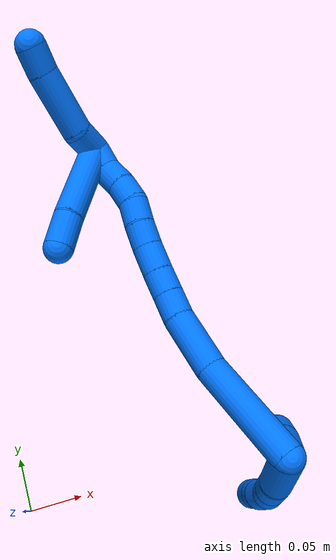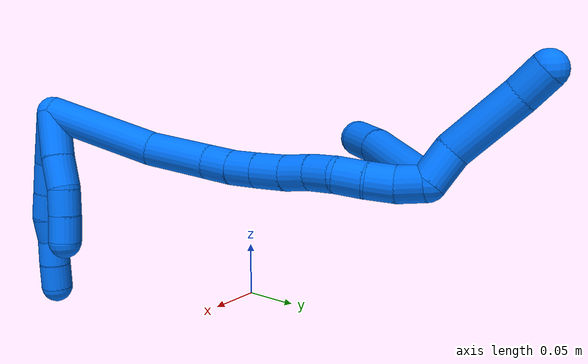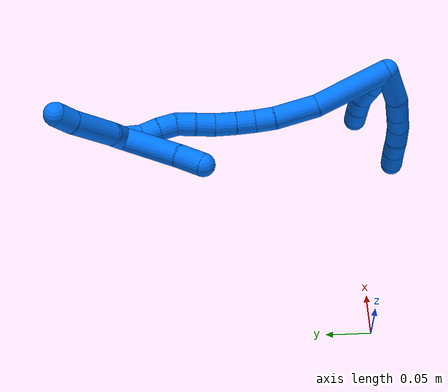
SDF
<sdf version="1.7">
 <world name="default">
  <model name="14">
   <static>0</static>
   <link name="14">
    <collision name="collision-cylinder-e_1_2_8">
     <pose>-0.004737 -0.007278 -0.019432 2.78323 -0.224443 -1.11316</pose>
     <geometry><cylinder><radius>0.0125</radius><length>0.042568</length></cylinder></geometry>
     <surface>
      <friction><ode><mu>1.16</mu><mu2>1.16</mu2><slip1>0</slip1><slip2>0</slip2></ode></friction>
      <contact><ode><kp>1e+06</kp><kd>1</kd><max_vel>0</max_vel><min_depth>0.001</min_depth></ode></contact>
     </surface>
    </collision>
    <visual name="visual-cylinder-e_1_2_8">
     <pose>-0.004737 -0.007278 -0.019432 2.78323 -0.224443 -1.11316</pose>
     <geometry><cylinder><radius>0.0125</radius><length>0.042568</length></cylinder></geometry>
     <material><ambient>0 0.462745 1 1</ambient></material>
    </visual>
    <collision name="collision-cylinder-e_2_8_9">
     <pose>-0.009984 -0.017233 -0.051496 2.93276 -0.039484 -0.372447</pose>
     <geometry><cylinder><radius>0.0125</radius><length>0.025845</length></cylinder></geometry>
     <surface>
      <friction><ode><mu>1.16</mu><mu2>1.16</mu2><slip1>0</slip1><slip2>0</slip2></ode></friction>
      <contact><ode><kp>1e+06</kp><kd>1</kd><max_vel>0</max_vel><min_depth>0.001</min_depth></ode></contact>
     </surface>
    </collision>
    <visual name="visual-cylinder-e_2_8_9">
     <pose>-0.009984 -0.017233 -0.051496 2.93276 -0.039484 -0.372447</pose>
     <geometry><cylinder><radius>0.0125</radius><length>0.025845</length></cylinder></geometry>
     <material><ambient>0 0.462745 1 1</ambient></material>
    </visual>
    <collision name="collision-cylinder-e_3_9_10">
     <pose>-0.01073 -0.022091 -0.074527 2.93485 -0.022142 -0.212629</pose>
     <geometry><cylinder><radius>0.0125</radius><length>0.021255</length></cylinder></geometry>
     <surface>
      <friction><ode><mu>1.16</mu><mu2>1.16</mu2><slip1>0</slip1><slip2>0</slip2></ode></friction>
      <contact><ode><kp>1e+06</kp><kd>1</kd><max_vel>0</max_vel><min_depth>0.001</min_depth></ode></contact>
     </surface>
    </collision>
    <visual name="visual-cylinder-e_3_9_10">
     <pose>-0.01073 -0.022091 -0.074527 2.93485 -0.022142 -0.212629</pose>
     <geometry><cylinder><radius>0.0125</radius><length>0.021255</length></cylinder></geometry>
     <material><ambient>0 0.462745 1 1</ambient></material>
    </visual>
    <collision name="collision-cylinder-e_4_10_11">
     <pose>-0.012569 -0.024099 -0.094838 -3.12413 -0.16039 2.92516</pose>
     <geometry><cylinder><radius>0.0125</radius><length>0.020087</length></cylinder></geometry>
     <surface>
      <friction><ode><mu>1.16</mu><mu2>1.16</mu2><slip1>0</slip1><slip2>0</slip2></ode></friction>
      <contact><ode><kp>1e+06</kp><kd>1</kd><max_vel>0</max_vel><min_depth>0.001</min_depth></ode></contact>
     </surface>
    </collision>
    <visual name="visual-cylinder-e_4_10_11">
     <pose>-0.012569 -0.024099 -0.094838 -3.12413 -0.16039 2.92516</pose>
     <geometry><cylinder><radius>0.0125</radius><length>0.020087</length></cylinder></geometry>
     <material><ambient>0 0.462745 1 1</ambient></material>
    </visual>
    <collision name="collision-cylinder-e_5_11_12">
     <pose>-0.013694 -0.024217 -0.114812 3.11265 0.047544 2.04809</pose>
     <geometry><cylinder><radius>0.0125</radius><length>0.020154</length></cylinder></geometry>
     <surface>
      <friction><ode><mu>1.16</mu><mu2>1.16</mu2><slip1>0</slip1><slip2>0</slip2></ode></friction>
      <contact><ode><kp>1e+06</kp><kd>1</kd><max_vel>0</max_vel><min_depth>0.001</min_depth></ode></contact>
     </surface>
    </collision>
    <visual name="visual-cylinder-e_5_11_12">
     <pose>-0.013694 -0.024217 -0.114812 3.11265 0.047544 2.04809</pose>
     <geometry><cylinder><radius>0.0125</radius><length>0.020154</length></cylinder></geometry>
     <material><ambient>0 0.462745 1 1</ambient></material>
    </visual>
    <collision name="collision-cylinder-e_6_12_6">
     <pose>-0.013426 -0.024886 -0.13491 3.10404 -0.021049 -1.02173</pose>
     <geometry><cylinder><radius>0.0125</radius><length>0.020091</length></cylinder></geometry>
     <surface>
      <friction><ode><mu>1.16</mu><mu2>1.16</mu2><slip1>0</slip1><slip2>0</slip2></ode></friction>
      <contact><ode><kp>1e+06</kp><kd>1</kd><max_vel>0</max_vel><min_depth>0.001</min_depth></ode></contact>
     </surface>
    </collision>
    <visual name="visual-cylinder-e_6_12_6">
     <pose>-0.013426 -0.024886 -0.13491 3.10404 -0.021049 -1.02173</pose>
     <geometry><cylinder><radius>0.0125</radius><length>0.020091</length></cylinder></geometry>
     <material><ambient>0 0.462745 1 1</ambient></material>
    </visual>
    <collision name="collision-cylinder-e_1_2_13">
     <pose>0.005693 0.003954 -0.016323 -2.90394 0.326806 -1.88813</pose>
     <geometry><cylinder><radius>0.0125</radius><length>0.035468</length></cylinder></geometry>
     <surface>
      <friction><ode><mu>1.16</mu><mu2>1.16</mu2><slip1>0</slip1><slip2>0</slip2></ode></friction>
      <contact><ode><kp>1e+06</kp><kd>1</kd><max_vel>0</max_vel><min_depth>0.001</min_depth></ode></contact>
     </surface>
    </collision>
    <visual name="visual-cylinder-e_1_2_13">
     <pose>0.005693 0.003954 -0.016323 -2.90394 0.326806 -1.88813</pose>
     <geometry><cylinder><radius>0.0125</radius><length>0.035468</length></cylinder></geometry>
     <material><ambient>0 0.462745 1 1</ambient></material>
    </visual>
    <collision name="collision-cylinder-e_2_13_14">
     <pose>0.014445 0.011204 -0.043852 -2.85548 0.256117 -1.45891</pose>
     <geometry><cylinder><radius>0.0125</radius><length>0.024149</length></cylinder></geometry>
     <surface>
      <friction><ode><mu>1.16</mu><mu2>1.16</mu2><slip1>0</slip1><slip2>0</slip2></ode></friction>
      <contact><ode><kp>1e+06</kp><kd>1</kd><max_vel>0</max_vel><min_depth>0.001</min_depth></ode></contact>
     </surface>
    </collision>
    <visual name="visual-cylinder-e_2_13_14">
     <pose>0.014445 0.011204 -0.043852 -2.85548 0.256117 -1.45891</pose>
     <geometry><cylinder><radius>0.0125</radius><length>0.024149</length></cylinder></geometry>
     <material><ambient>0 0.462745 1 1</ambient></material>
    </visual>
    <collision name="collision-cylinder-e_3_14_15">
     <pose>0.018841 0.014714 -0.06498 -3.12009 0.134018 -2.82388</pose>
     <geometry><cylinder><radius>0.0125</radius><length>0.020028</length></cylinder></geometry>
     <surface>
      <friction><ode><mu>1.16</mu><mu2>1.16</mu2><slip1>0</slip1><slip2>0</slip2></ode></friction>
      <contact><ode><kp>1e+06</kp><kd>1</kd><max_vel>0</max_vel><min_depth>0.001</min_depth></ode></contact>
     </surface>
    </collision>
    <visual name="visual-cylinder-e_3_14_15">
     <pose>0.018841 0.014714 -0.06498 -3.12009 0.134018 -2.82388</pose>
     <geometry><cylinder><radius>0.0125</radius><length>0.020028</length></cylinder></geometry>
     <material><ambient>0 0.462745 1 1</ambient></material>
    </visual>
    <collision name="collision-cylinder-e_4_15_5">
     <pose>0.021523 0.014602 -0.084985 3.10933 0.132396 2.66417</pose>
     <geometry><cylinder><radius>0.0125</radius><length>0.020356</length></cylinder></geometry>
     <surface>
      <friction><ode><mu>1.16</mu><mu2>1.16</mu2><slip1>0</slip1><slip2>0</slip2></ode></friction>
      <contact><ode><kp>1e+06</kp><kd>1</kd><max_vel>0</max_vel><min_depth>0.001</min_depth></ode></contact>
     </surface>
    </collision>
    <visual name="visual-cylinder-e_4_15_5">
     <pose>0.021523 0.014602 -0.084985 3.10933 0.132396 2.66417</pose>
     <geometry><cylinder><radius>0.0125</radius><length>0.020356</length></cylinder></geometry>
     <material><ambient>0 0.462745 1 1</ambient></material>
    </visual>
    <collision name="collision-cylinder-e_1_2_16">
     <pose>-0.002457 0.040409 -0.013929 -1.90275 -0.057418 0.080504</pose>
     <geometry><cylinder><radius>0.0125</radius><length>0.085626</length></cylinder></geometry>
     <surface>
      <friction><ode><mu>1.16</mu><mu2>1.16</mu2><slip1>0</slip1><slip2>0</slip2></ode></friction>
      <contact><ode><kp>1e+06</kp><kd>1</kd><max_vel>0</max_vel><min_depth>0.001</min_depth></ode></contact>
     </surface>
    </collision>
    <visual name="visual-cylinder-e_1_2_16">
     <pose>-0.002457 0.040409 -0.013929 -1.90275 -0.057418 0.080504</pose>
     <geometry><cylinder><radius>0.0125</radius><length>0.085626</length></cylinder></geometry>
     <material><ambient>0 0.462745 1 1</ambient></material>
    </visual>
    <collision name="collision-cylinder-e_2_16_17">
     <pose>-0.00371 0.104451 -0.032218 -1.7532 0.050056 -0.060129</pose>
     <geometry><cylinder><radius>0.0125</radius><length>0.048123</length></cylinder></geometry>
     <surface>
      <friction><ode><mu>1.16</mu><mu2>1.16</mu2><slip1>0</slip1><slip2>0</slip2></ode></friction>
      <contact><ode><kp>1e+06</kp><kd>1</kd><max_vel>0</max_vel><min_depth>0.001</min_depth></ode></contact>
     </surface>
    </collision>
    <visual name="visual-cylinder-e_2_16_17">
     <pose>-0.00371 0.104451 -0.032218 -1.7532 0.050056 -0.060129</pose>
     <geometry><cylinder><radius>0.0125</radius><length>0.048123</length></cylinder></geometry>
     <material><ambient>0 0.462745 1 1</ambient></material>
    </visual>
    <collision name="collision-cylinder-e_3_17_18">
     <pose>-0.000496 0.138499 -0.038059 -1.71211 0.188768 -0.217312</pose>
     <geometry><cylinder><radius>0.0125</radius><length>0.021422</length></cylinder></geometry>
     <surface>
      <friction><ode><mu>1.16</mu><mu2>1.16</mu2><slip1>0</slip1><slip2>0</slip2></ode></friction>
      <contact><ode><kp>1e+06</kp><kd>1</kd><max_vel>0</max_vel><min_depth>0.001</min_depth></ode></contact>
     </surface>
    </collision>
    <visual name="visual-cylinder-e_3_17_18">
     <pose>-0.000496 0.138499 -0.038059 -1.71211 0.188768 -0.217312</pose>
     <geometry><cylinder><radius>0.0125</radius><length>0.021422</length></cylinder></geometry>
     <material><ambient>0 0.462745 1 1</ambient></material>
    </visual>
    <collision name="collision-cylinder-e_4_18_19">
     <pose>0.003257 0.159131 -0.040045 -1.62012 0.168829 -0.177324</pose>
     <geometry><cylinder><radius>0.0125</radius><length>0.020752</length></cylinder></geometry>
     <surface>
      <friction><ode><mu>1.16</mu><mu2>1.16</mu2><slip1>0</slip1><slip2>0</slip2></ode></friction>
      <contact><ode><kp>1e+06</kp><kd>1</kd><max_vel>0</max_vel><min_depth>0.001</min_depth></ode></contact>
     </surface>
    </collision>
    <visual name="visual-cylinder-e_4_18_19">
     <pose>0.003257 0.159131 -0.040045 -1.62012 0.168829 -0.177324</pose>
     <geometry><cylinder><radius>0.0125</radius><length>0.020752</length></cylinder></geometry>
     <material><ambient>0 0.462745 1 1</ambient></material>
    </visual>
    <collision name="collision-cylinder-e_5_19_20">
     <pose>0.007236 0.180833 -0.040803 -1.59287 0.19211 -0.19637</pose>
     <geometry><cylinder><radius>0.0125</radius><length>0.023409</length></cylinder></geometry>
     <surface>
      <friction><ode><mu>1.16</mu><mu2>1.16</mu2><slip1>0</slip1><slip2>0</slip2></ode></friction>
      <contact><ode><kp>1e+06</kp><kd>1</kd><max_vel>0</max_vel><min_depth>0.001</min_depth></ode></contact>
     </surface>
    </collision>
    <visual name="visual-cylinder-e_5_19_20">
     <pose>0.007236 0.180833 -0.040803 -1.59287 0.19211 -0.19637</pose>
     <geometry><cylinder><radius>0.0125</radius><length>0.023409</length></cylinder></geometry>
     <material><ambient>0 0.462745 1 1</ambient></material>
    </visual>
    <collision name="collision-cylinder-e_6_20_21">
     <pose>0.011768 0.202244 -0.040219 -1.48661 0.226747 -0.208558</pose>
     <geometry><cylinder><radius>0.0125</radius><length>0.020442</length></cylinder></geometry>
     <surface>
      <friction><ode><mu>1.16</mu><mu2>1.16</mu2><slip1>0</slip1><slip2>0</slip2></ode></friction>
      <contact><ode><kp>1e+06</kp><kd>1</kd><max_vel>0</max_vel><min_depth>0.001</min_depth></ode></contact>
     </surface>
    </collision>
    <visual name="visual-cylinder-e_6_20_21">
     <pose>0.011768 0.202244 -0.040219 -1.48661 0.226747 -0.208558</pose>
     <geometry><cylinder><radius>0.0125</radius><length>0.020442</length></cylinder></geometry>
     <material><ambient>0 0.462745 1 1</ambient></material>
    </visual>
    <collision name="collision-cylinder-e_7_21_22">
     <pose>0.01708 0.221739 -0.03941 -1.57378 0.305056 -0.305953</pose>
     <geometry><cylinder><radius>0.0125</radius><length>0.020069</length></cylinder></geometry>
     <surface>
      <friction><ode><mu>1.16</mu><mu2>1.16</mu2><slip1>0</slip1><slip2>0</slip2></ode></friction>
      <contact><ode><kp>1e+06</kp><kd>1</kd><max_vel>0</max_vel><min_depth>0.001</min_depth></ode></contact>
     </surface>
    </collision>
    <visual name="visual-cylinder-e_7_21_22">
     <pose>0.01708 0.221739 -0.03941 -1.57378 0.305056 -0.305953</pose>
     <geometry><cylinder><radius>0.0125</radius><length>0.020069</length></cylinder></geometry>
     <material><ambient>0 0.462745 1 1</ambient></material>
    </visual>
    <collision name="collision-cylinder-e_8_22_23">
     <pose>0.020399 0.241202 -0.040919 -1.71939 0.030526 -0.035435</pose>
     <geometry><cylinder><radius>0.0125</radius><length>0.020013</length></cylinder></geometry>
     <surface>
      <friction><ode><mu>1.16</mu><mu2>1.16</mu2><slip1>0</slip1><slip2>0</slip2></ode></friction>
      <contact><ode><kp>1e+06</kp><kd>1</kd><max_vel>0</max_vel><min_depth>0.001</min_depth></ode></contact>
     </surface>
    </collision>
    <visual name="visual-cylinder-e_8_22_23">
     <pose>0.020399 0.241202 -0.040919 -1.71939 0.030526 -0.035435</pose>
     <geometry><cylinder><radius>0.0125</radius><length>0.020013</length></cylinder></geometry>
     <material><ambient>0 0.462745 1 1</ambient></material>
    </visual>
    <collision name="collision-cylinder-e_9_23_24">
     <pose>0.019302 0.260896 -0.04383 -1.71565 -0.140603 0.162511</pose>
     <geometry><cylinder><radius>0.0125</radius><length>0.02001</length></cylinder></geometry>
     <surface>
      <friction><ode><mu>1.16</mu><mu2>1.16</mu2><slip1>0</slip1><slip2>0</slip2></ode></friction>
      <contact><ode><kp>1e+06</kp><kd>1</kd><max_vel>0</max_vel><min_depth>0.001</min_depth></ode></contact>
     </surface>
    </collision>
    <visual name="visual-cylinder-e_9_23_24">
     <pose>0.019302 0.260896 -0.04383 -1.71565 -0.140603 0.162511</pose>
     <geometry><cylinder><radius>0.0125</radius><length>0.02001</length></cylinder></geometry>
     <material><ambient>0 0.462745 1 1</ambient></material>
    </visual>
    <collision name="collision-cylinder-e_10_24_1">
     <pose>0.01844 0.280717 -0.044433 -1.48846 0.053628 -0.049387</pose>
     <geometry><cylinder><radius>0.0125</radius><length>0.020134</length></cylinder></geometry>
     <surface>
      <friction><ode><mu>1.16</mu><mu2>1.16</mu2><slip1>0</slip1><slip2>0</slip2></ode></friction>
      <contact><ode><kp>1e+06</kp><kd>1</kd><max_vel>0</max_vel><min_depth>0.001</min_depth></ode></contact>
     </surface>
    </collision>
    <visual name="visual-cylinder-e_10_24_1">
     <pose>0.01844 0.280717 -0.044433 -1.48846 0.053628 -0.049387</pose>
     <geometry><cylinder><radius>0.0125</radius><length>0.020134</length></cylinder></geometry>
     <material><ambient>0 0.462745 1 1</ambient></material>
    </visual>
    <collision name="collision-cylinder-e_1_1_25">
     <pose>-0.007343 0.267606 -0.036624 1.27761 -0.828182 -0.631024</pose>
     <geometry><cylinder><radius>0.0125</radius><length>0.07146</length></cylinder></geometry>
     <surface>
      <friction><ode><mu>1.16</mu><mu2>1.16</mu2><slip1>0</slip1><slip2>0</slip2></ode></friction>
      <contact><ode><kp>1e+06</kp><kd>1</kd><max_vel>0</max_vel><min_depth>0.001</min_depth></ode></contact>
     </surface>
    </collision>
    <visual name="visual-cylinder-e_1_1_25">
     <pose>-0.007343 0.267606 -0.036624 1.27761 -0.828182 -0.631024</pose>
     <geometry><cylinder><radius>0.0125</radius><length>0.07146</length></cylinder></geometry>
     <material><ambient>0 0.462745 1 1</ambient></material>
    </visual>
    <collision name="collision-cylinder-e_2_25_4">
     <pose>-0.043945 0.234662 -0.028349 1.4399 -0.804326 -0.714064</pose>
     <geometry><cylinder><radius>0.0125</radius><length>0.02854</length></cylinder></geometry>
     <surface>
      <friction><ode><mu>1.16</mu><mu2>1.16</mu2><slip1>0</slip1><slip2>0</slip2></ode></friction>
      <contact><ode><kp>1e+06</kp><kd>1</kd><max_vel>0</max_vel><min_depth>0.001</min_depth></ode></contact>
     </surface>
    </collision>
    <visual name="visual-cylinder-e_2_25_4">
     <pose>-0.043945 0.234662 -0.028349 1.4399 -0.804326 -0.714064</pose>
     <geometry><cylinder><radius>0.0125</radius><length>0.02854</length></cylinder></geometry>
     <material><ambient>0 0.462745 1 1</ambient></material>
    </visual>
    <collision name="collision-cylinder-e_1_1_26">
     <pose>0.014768 0.297756 -0.033949 -0.628546 -0.339142 0.111191</pose>
     <geometry><cylinder><radius>0.0125</radius><length>0.025321</length></cylinder></geometry>
     <surface>
      <friction><ode><mu>1.16</mu><mu2>1.16</mu2><slip1>0</slip1><slip2>0</slip2></ode></friction>
      <contact><ode><kp>1e+06</kp><kd>1</kd><max_vel>0</max_vel><min_depth>0.001</min_depth></ode></contact>
     </surface>
    </collision>
    <visual name="visual-cylinder-e_1_1_26">
     <pose>0.014768 0.297756 -0.033949 -0.628546 -0.339142 0.111191</pose>
     <geometry><cylinder><radius>0.0125</radius><length>0.025321</length></cylinder></geometry>
     <material><ambient>0 0.462745 1 1</ambient></material>
    </visual>
    <collision name="collision-cylinder-e_2_26_27">
     <pose>0.00818 0.324975 -0.007463 -0.876184 -0.090104 0.042232</pose>
     <geometry><cylinder><radius>0.0125</radius><length>0.052797</length></cylinder></geometry>
     <surface>
      <friction><ode><mu>1.16</mu><mu2>1.16</mu2><slip1>0</slip1><slip2>0</slip2></ode></friction>
      <contact><ode><kp>1e+06</kp><kd>1</kd><max_vel>0</max_vel><min_depth>0.001</min_depth></ode></contact>
     </surface>
    </collision>
    <visual name="visual-cylinder-e_2_26_27">
     <pose>0.00818 0.324975 -0.007463 -0.876184 -0.090104 0.042232</pose>
     <geometry><cylinder><radius>0.0125</radius><length>0.052797</length></cylinder></geometry>
     <material><ambient>0 0.462745 1 1</ambient></material>
    </visual>
    <collision name="collision-cylinder-e_3_27_3">
     <pose>0.005903 0.353102 0.016907 -0.810353 0.008989 -0.003855</pose>
     <geometry><cylinder><radius>0.0125</radius><length>0.021882</length></cylinder></geometry>
     <surface>
      <friction><ode><mu>1.16</mu><mu2>1.16</mu2><slip1>0</slip1><slip2>0</slip2></ode></friction>
      <contact><ode><kp>1e+06</kp><kd>1</kd><max_vel>0</max_vel><min_depth>0.001</min_depth></ode></contact>
     </surface>
    </collision>
    <visual name="visual-cylinder-e_3_27_3">
     <pose>0.005903 0.353102 0.016907 -0.810353 0.008989 -0.003855</pose>
     <geometry><cylinder><radius>0.0125</radius><length>0.021882</length></cylinder></geometry>
     <material><ambient>0 0.462745 1 1</ambient></material>
    </visual>
    <collision name="collision-sphere-3">
     <pose>0.006002 0.361029 0.024448 0 -0 0</pose>
     <geometry><sphere><radius>0.0125</radius></sphere></geometry>
     <surface>
      <friction><ode><mu>1.16</mu><mu2>1.16</mu2><slip1>0</slip1><slip2>0</slip2></ode></friction>
      <contact><ode><kp>1e+06</kp><kd>1</kd><max_vel>0</max_vel><min_depth>0.001</min_depth></ode></contact>
     </surface>
    </collision>
    <visual name="visual-sphere-3">
     <pose>0.006002 0.361029 0.024448 0 -0 0</pose>
     <geometry><sphere><radius>0.0125</radius></sphere></geometry>
     <material><ambient>0 0.462745 1 1</ambient></material>
    </visual>
    <collision name="collision-sphere-27">
     <pose>0.005805 0.345175 0.009366 0 -0 0</pose>
     <geometry><sphere><radius>0.0125</radius></sphere></geometry>
     <surface>
      <friction><ode><mu>1.16</mu><mu2>1.16</mu2><slip1>0</slip1><slip2>0</slip2></ode></friction>
      <contact><ode><kp>1e+06</kp><kd>1</kd><max_vel>0</max_vel><min_depth>0.001</min_depth></ode></contact>
     </surface>
    </collision>
    <visual name="visual-sphere-27">
     <pose>0.005805 0.345175 0.009366 0 -0 0</pose>
     <geometry><sphere><radius>0.0125</radius></sphere></geometry>
     <material><ambient>0 0.462745 1 1</ambient></material>
    </visual>
    <collision name="collision-sphere-26">
     <pose>0.010556 0.304776 -0.024291 0 -0 0</pose>
     <geometry><sphere><radius>0.0125</radius></sphere></geometry>
     <surface>
      <friction><ode><mu>1.16</mu><mu2>1.16</mu2><slip1>0</slip1><slip2>0</slip2></ode></friction>
      <contact><ode><kp>1e+06</kp><kd>1</kd><max_vel>0</max_vel><min_depth>0.001</min_depth></ode></contact>
     </surface>
    </collision>
    <visual name="visual-sphere-26">
     <pose>0.010556 0.304776 -0.024291 0 -0 0</pose>
     <geometry><sphere><radius>0.0125</radius></sphere></geometry>
     <material><ambient>0 0.462745 1 1</ambient></material>
    </visual>
    <collision name="collision-sphere-4">
     <pose>-0.054225 0.224849 -0.027057 0 -0 0</pose>
     <geometry><sphere><radius>0.0125</radius></sphere></geometry>
     <surface>
      <friction><ode><mu>1.16</mu><mu2>1.16</mu2><slip1>0</slip1><slip2>0</slip2></ode></friction>
      <contact><ode><kp>1e+06</kp><kd>1</kd><max_vel>0</max_vel><min_depth>0.001</min_depth></ode></contact>
     </surface>
    </collision>
    <visual name="visual-sphere-4">
     <pose>-0.054225 0.224849 -0.027057 0 -0 0</pose>
     <geometry><sphere><radius>0.0125</radius></sphere></geometry>
     <material><ambient>0 0.462745 1 1</ambient></material>
    </visual>
    <collision name="collision-sphere-25">
     <pose>-0.033665 0.244475 -0.029641 0 -0 0</pose>
     <geometry><sphere><radius>0.0125</radius></sphere></geometry>
     <surface>
      <friction><ode><mu>1.16</mu><mu2>1.16</mu2><slip1>0</slip1><slip2>0</slip2></ode></friction>
      <contact><ode><kp>1e+06</kp><kd>1</kd><max_vel>0</max_vel><min_depth>0.001</min_depth></ode></contact>
     </surface>
    </collision>
    <visual name="visual-sphere-25">
     <pose>-0.033665 0.244475 -0.029641 0 -0 0</pose>
     <geometry><sphere><radius>0.0125</radius></sphere></geometry>
     <material><ambient>0 0.462745 1 1</ambient></material>
    </visual>
    <collision name="collision-sphere-1">
     <pose>0.018979 0.290736 -0.043606 0 -0 0</pose>
     <geometry><sphere><radius>0.0125</radius></sphere></geometry>
     <surface>
      <friction><ode><mu>1.16</mu><mu2>1.16</mu2><slip1>0</slip1><slip2>0</slip2></ode></friction>
      <contact><ode><kp>1e+06</kp><kd>1</kd><max_vel>0</max_vel><min_depth>0.001</min_depth></ode></contact>
     </surface>
    </collision>
    <visual name="visual-sphere-1">
     <pose>0.018979 0.290736 -0.043606 0 -0 0</pose>
     <geometry><sphere><radius>0.0125</radius></sphere></geometry>
     <material><ambient>0 0.462745 1 1</ambient></material>
    </visual>
    <collision name="collision-sphere-24">
     <pose>0.0179 0.270699 -0.04526 0 -0 0</pose>
     <geometry><sphere><radius>0.0125</radius></sphere></geometry>
     <surface>
      <friction><ode><mu>1.16</mu><mu2>1.16</mu2><slip1>0</slip1><slip2>0</slip2></ode></friction>
      <contact><ode><kp>1e+06</kp><kd>1</kd><max_vel>0</max_vel><min_depth>0.001</min_depth></ode></contact>
     </surface>
    </collision>
    <visual name="visual-sphere-24">
     <pose>0.0179 0.270699 -0.04526 0 -0 0</pose>
     <geometry><sphere><radius>0.0125</radius></sphere></geometry>
     <material><ambient>0 0.462745 1 1</ambient></material>
    </visual>
    <collision name="collision-sphere-23">
     <pose>0.020704 0.251093 -0.0424 0 -0 0</pose>
     <geometry><sphere><radius>0.0125</radius></sphere></geometry>
     <surface>
      <friction><ode><mu>1.16</mu><mu2>1.16</mu2><slip1>0</slip1><slip2>0</slip2></ode></friction>
      <contact><ode><kp>1e+06</kp><kd>1</kd><max_vel>0</max_vel><min_depth>0.001</min_depth></ode></contact>
     </surface>
    </collision>
    <visual name="visual-sphere-23">
     <pose>0.020704 0.251093 -0.0424 0 -0 0</pose>
     <geometry><sphere><radius>0.0125</radius></sphere></geometry>
     <material><ambient>0 0.462745 1 1</ambient></material>
    </visual>
    <collision name="collision-sphere-22">
     <pose>0.020094 0.231311 -0.039438 0 -0 0</pose>
     <geometry><sphere><radius>0.0125</radius></sphere></geometry>
     <surface>
      <friction><ode><mu>1.16</mu><mu2>1.16</mu2><slip1>0</slip1><slip2>0</slip2></ode></friction>
      <contact><ode><kp>1e+06</kp><kd>1</kd><max_vel>0</max_vel><min_depth>0.001</min_depth></ode></contact>
     </surface>
    </collision>
    <visual name="visual-sphere-22">
     <pose>0.020094 0.231311 -0.039438 0 -0 0</pose>
     <geometry><sphere><radius>0.0125</radius></sphere></geometry>
     <material><ambient>0 0.462745 1 1</ambient></material>
    </visual>
    <collision name="collision-sphere-21">
     <pose>0.014066 0.212168 -0.039381 0 -0 0</pose>
     <geometry><sphere><radius>0.0125</radius></sphere></geometry>
     <surface>
      <friction><ode><mu>1.16</mu><mu2>1.16</mu2><slip1>0</slip1><slip2>0</slip2></ode></friction>
      <contact><ode><kp>1e+06</kp><kd>1</kd><max_vel>0</max_vel><min_depth>0.001</min_depth></ode></contact>
     </surface>
    </collision>
    <visual name="visual-sphere-21">
     <pose>0.014066 0.212168 -0.039381 0 -0 0</pose>
     <geometry><sphere><radius>0.0125</radius></sphere></geometry>
     <material><ambient>0 0.462745 1 1</ambient></material>
    </visual>
    <collision name="collision-sphere-12">
     <pose>-0.013215 -0.024508 -0.124874 0 -0 0</pose>
     <geometry><sphere><radius>0.0125</radius></sphere></geometry>
     <surface>
      <friction><ode><mu>1.16</mu><mu2>1.16</mu2><slip1>0</slip1><slip2>0</slip2></ode></friction>
      <contact><ode><kp>1e+06</kp><kd>1</kd><max_vel>0</max_vel><min_depth>0.001</min_depth></ode></contact>
     </surface>
    </collision>
    <visual name="visual-sphere-12">
     <pose>-0.013215 -0.024508 -0.124874 0 -0 0</pose>
     <geometry><sphere><radius>0.0125</radius></sphere></geometry>
     <material><ambient>0 0.462745 1 1</ambient></material>
    </visual>
    <collision name="collision-sphere-11">
     <pose>-0.014173 -0.023926 -0.104751 0 -0 0</pose>
     <geometry><sphere><radius>0.0125</radius></sphere></geometry>
     <surface>
      <friction><ode><mu>1.16</mu><mu2>1.16</mu2><slip1>0</slip1><slip2>0</slip2></ode></friction>
      <contact><ode><kp>1e+06</kp><kd>1</kd><max_vel>0</max_vel><min_depth>0.001</min_depth></ode></contact>
     </surface>
    </collision>
    <visual name="visual-sphere-11">
     <pose>-0.014173 -0.023926 -0.104751 0 -0 0</pose>
     <geometry><sphere><radius>0.0125</radius></sphere></geometry>
     <material><ambient>0 0.462745 1 1</ambient></material>
    </visual>
    <collision name="collision-sphere-10">
     <pose>-0.010965 -0.024272 -0.084925 0 -0 0</pose>
     <geometry><sphere><radius>0.0125</radius></sphere></geometry>
     <surface>
      <friction><ode><mu>1.16</mu><mu2>1.16</mu2><slip1>0</slip1><slip2>0</slip2></ode></friction>
      <contact><ode><kp>1e+06</kp><kd>1</kd><max_vel>0</max_vel><min_depth>0.001</min_depth></ode></contact>
     </surface>
    </collision>
    <visual name="visual-sphere-10">
     <pose>-0.010965 -0.024272 -0.084925 0 -0 0</pose>
     <geometry><sphere><radius>0.0125</radius></sphere></geometry>
     <material><ambient>0 0.462745 1 1</ambient></material>
    </visual>
    <collision name="collision-sphere-9">
     <pose>-0.010494 -0.01991 -0.064128 0 -0 0</pose>
     <geometry><sphere><radius>0.0125</radius></sphere></geometry>
     <surface>
      <friction><ode><mu>1.16</mu><mu2>1.16</mu2><slip1>0</slip1><slip2>0</slip2></ode></friction>
      <contact><ode><kp>1e+06</kp><kd>1</kd><max_vel>0</max_vel><min_depth>0.001</min_depth></ode></contact>
     </surface>
    </collision>
    <visual name="visual-sphere-9">
     <pose>-0.010494 -0.01991 -0.064128 0 -0 0</pose>
     <geometry><sphere><radius>0.0125</radius></sphere></geometry>
     <material><ambient>0 0.462745 1 1</ambient></material>
    </visual>
    <collision name="collision-sphere-2">
     <geometry><sphere><radius>0.0125</radius></sphere></geometry>
     <surface>
      <friction><ode><mu>1.16</mu><mu2>1.16</mu2><slip1>0</slip1><slip2>0</slip2></ode></friction>
      <contact><ode><kp>1e+06</kp><kd>1</kd><max_vel>0</max_vel><min_depth>0.001</min_depth></ode></contact>
     </surface>
    </collision>
    <visual name="visual-sphere-2">
     <geometry><sphere><radius>0.0125</radius></sphere></geometry>
     <material><ambient>0 0.462745 1 1</ambient></material>
    </visual>
    <collision name="collision-sphere-19">
     <pose>0.005001 0.169347 -0.040549 0 -0 0</pose>
     <geometry><sphere><radius>0.0125</radius></sphere></geometry>
     <surface>
      <friction><ode><mu>1.16</mu><mu2>1.16</mu2><slip1>0</slip1><slip2>0</slip2></ode></friction>
      <contact><ode><kp>1e+06</kp><kd>1</kd><max_vel>0</max_vel><min_depth>0.001</min_depth></ode></contact>
     </surface>
    </collision>
    <visual name="visual-sphere-19">
     <pose>0.005001 0.169347 -0.040549 0 -0 0</pose>
     <geometry><sphere><radius>0.0125</radius></sphere></geometry>
     <material><ambient>0 0.462745 1 1</ambient></material>
    </visual>
    <collision name="collision-sphere-8">
     <pose>-0.009474 -0.014556 -0.038864 0 -0 0</pose>
     <geometry><sphere><radius>0.0125</radius></sphere></geometry>
     <surface>
      <friction><ode><mu>1.16</mu><mu2>1.16</mu2><slip1>0</slip1><slip2>0</slip2></ode></friction>
      <contact><ode><kp>1e+06</kp><kd>1</kd><max_vel>0</max_vel><min_depth>0.001</min_depth></ode></contact>
     </surface>
    </collision>
    <visual name="visual-sphere-8">
     <pose>-0.009474 -0.014556 -0.038864 0 -0 0</pose>
     <geometry><sphere><radius>0.0125</radius></sphere></geometry>
     <material><ambient>0 0.462745 1 1</ambient></material>
    </visual>
    <collision name="collision-sphere-6">
     <pose>-0.013638 -0.025263 -0.144946 0 -0 0</pose>
     <geometry><sphere><radius>0.0125</radius></sphere></geometry>
     <surface>
      <friction><ode><mu>1.16</mu><mu2>1.16</mu2><slip1>0</slip1><slip2>0</slip2></ode></friction>
      <contact><ode><kp>1e+06</kp><kd>1</kd><max_vel>0</max_vel><min_depth>0.001</min_depth></ode></contact>
     </surface>
    </collision>
    <visual name="visual-sphere-6">
     <pose>-0.013638 -0.025263 -0.144946 0 -0 0</pose>
     <geometry><sphere><radius>0.0125</radius></sphere></geometry>
     <material><ambient>0 0.462745 1 1</ambient></material>
    </visual>
    <collision name="collision-sphere-13">
     <pose>0.011386 0.007908 -0.032646 0 -0 0</pose>
     <geometry><sphere><radius>0.0125</radius></sphere></geometry>
     <surface>
      <friction><ode><mu>1.16</mu><mu2>1.16</mu2><slip1>0</slip1><slip2>0</slip2></ode></friction>
      <contact><ode><kp>1e+06</kp><kd>1</kd><max_vel>0</max_vel><min_depth>0.001</min_depth></ode></contact>
     </surface>
    </collision>
    <visual name="visual-sphere-13">
     <pose>0.011386 0.007908 -0.032646 0 -0 0</pose>
     <geometry><sphere><radius>0.0125</radius></sphere></geometry>
     <material><ambient>0 0.462745 1 1</ambient></material>
    </visual>
    <collision name="collision-sphere-14">
     <pose>0.017503 0.014501 -0.055058 0 -0 0</pose>
     <geometry><sphere><radius>0.0125</radius></sphere></geometry>
     <surface>
      <friction><ode><mu>1.16</mu><mu2>1.16</mu2><slip1>0</slip1><slip2>0</slip2></ode></friction>
      <contact><ode><kp>1e+06</kp><kd>1</kd><max_vel>0</max_vel><min_depth>0.001</min_depth></ode></contact>
     </surface>
    </collision>
    <visual name="visual-sphere-14">
     <pose>0.017503 0.014501 -0.055058 0 -0 0</pose>
     <geometry><sphere><radius>0.0125</radius></sphere></geometry>
     <material><ambient>0 0.462745 1 1</ambient></material>
    </visual>
    <collision name="collision-sphere-15">
     <pose>0.020179 0.014928 -0.074901 0 -0 0</pose>
     <geometry><sphere><radius>0.0125</radius></sphere></geometry>
     <surface>
      <friction><ode><mu>1.16</mu><mu2>1.16</mu2><slip1>0</slip1><slip2>0</slip2></ode></friction>
      <contact><ode><kp>1e+06</kp><kd>1</kd><max_vel>0</max_vel><min_depth>0.001</min_depth></ode></contact>
     </surface>
    </collision>
    <visual name="visual-sphere-15">
     <pose>0.020179 0.014928 -0.074901 0 -0 0</pose>
     <geometry><sphere><radius>0.0125</radius></sphere></geometry>
     <material><ambient>0 0.462745 1 1</ambient></material>
    </visual>
    <collision name="collision-sphere-5">
     <pose>0.022867 0.014277 -0.095068 0 -0 0</pose>
     <geometry><sphere><radius>0.0125</radius></sphere></geometry>
     <surface>
      <friction><ode><mu>1.16</mu><mu2>1.16</mu2><slip1>0</slip1><slip2>0</slip2></ode></friction>
      <contact><ode><kp>1e+06</kp><kd>1</kd><max_vel>0</max_vel><min_depth>0.001</min_depth></ode></contact>
     </surface>
    </collision>
    <visual name="visual-sphere-5">
     <pose>0.022867 0.014277 -0.095068 0 -0 0</pose>
     <geometry><sphere><radius>0.0125</radius></sphere></geometry>
     <material><ambient>0 0.462745 1 1</ambient></material>
    </visual>
    <collision name="collision-sphere-16">
     <pose>-0.004914 0.080818 -0.027859 0 -0 0</pose>
     <geometry><sphere><radius>0.0125</radius></sphere></geometry>
     <surface>
      <friction><ode><mu>1.16</mu><mu2>1.16</mu2><slip1>0</slip1><slip2>0</slip2></ode></friction>
      <contact><ode><kp>1e+06</kp><kd>1</kd><max_vel>0</max_vel><min_depth>0.001</min_depth></ode></contact>
     </surface>
    </collision>
    <visual name="visual-sphere-16">
     <pose>-0.004914 0.080818 -0.027859 0 -0 0</pose>
     <geometry><sphere><radius>0.0125</radius></sphere></geometry>
     <material><ambient>0 0.462745 1 1</ambient></material>
    </visual>
    <collision name="collision-sphere-17">
     <pose>-0.002506 0.128084 -0.036577 0 -0 0</pose>
     <geometry><sphere><radius>0.0125</radius></sphere></geometry>
     <surface>
      <friction><ode><mu>1.16</mu><mu2>1.16</mu2><slip1>0</slip1><slip2>0</slip2></ode></friction>
      <contact><ode><kp>1e+06</kp><kd>1</kd><max_vel>0</max_vel><min_depth>0.001</min_depth></ode></contact>
     </surface>
    </collision>
    <visual name="visual-sphere-17">
     <pose>-0.002506 0.128084 -0.036577 0 -0 0</pose>
     <geometry><sphere><radius>0.0125</radius></sphere></geometry>
     <material><ambient>0 0.462745 1 1</ambient></material>
    </visual>
    <collision name="collision-sphere-18">
     <pose>0.001514 0.148915 -0.039541 0 -0 0</pose>
     <geometry><sphere><radius>0.0125</radius></sphere></geometry>
     <surface>
      <friction><ode><mu>1.16</mu><mu2>1.16</mu2><slip1>0</slip1><slip2>0</slip2></ode></friction>
      <contact><ode><kp>1e+06</kp><kd>1</kd><max_vel>0</max_vel><min_depth>0.001</min_depth></ode></contact>
     </surface>
    </collision>
    <visual name="visual-sphere-18">
     <pose>0.001514 0.148915 -0.039541 0 -0 0</pose>
     <geometry><sphere><radius>0.0125</radius></sphere></geometry>
     <material><ambient>0 0.462745 1 1</ambient></material>
    </visual>
    <collision name="collision-sphere-20">
     <pose>0.00947 0.19232 -0.041056 0 -0 0</pose>
     <geometry><sphere><radius>0.0125</radius></sphere></geometry>
     <surface>
      <friction><ode><mu>1.16</mu><mu2>1.16</mu2><slip1>0</slip1><slip2>0</slip2></ode></friction>
      <contact><ode><kp>1e+06</kp><kd>1</kd><max_vel>0</max_vel><min_depth>0.001</min_depth></ode></contact>
     </surface>
    </collision>
    <visual name="visual-sphere-20">
     <pose>0.00947 0.19232 -0.041056 0 -0 0</pose>
     <geometry><sphere><radius>0.0125</radius></sphere></geometry>
     <material><ambient>0 0.462745 1 1</ambient></material>
    </visual>
    <inertial>
     <pose>0.00083 0.133097 -0.038932 0 -0 0</pose>
     <mass>0.75</mass>
     <inertia><ixx>8.8e-05</ixx><ixy>0</ixy><ixz>0</ixz><iyy>1.1e-05</iyy><iyz>0</iyz><izz>-5e-05</izz></inertia>
    </inertial>
   </link>
   <pose>0.2106 -0.021418 0.198487 0.058911 0.006473 0.288759</pose>
  </model>
 </world>
</sdf>
